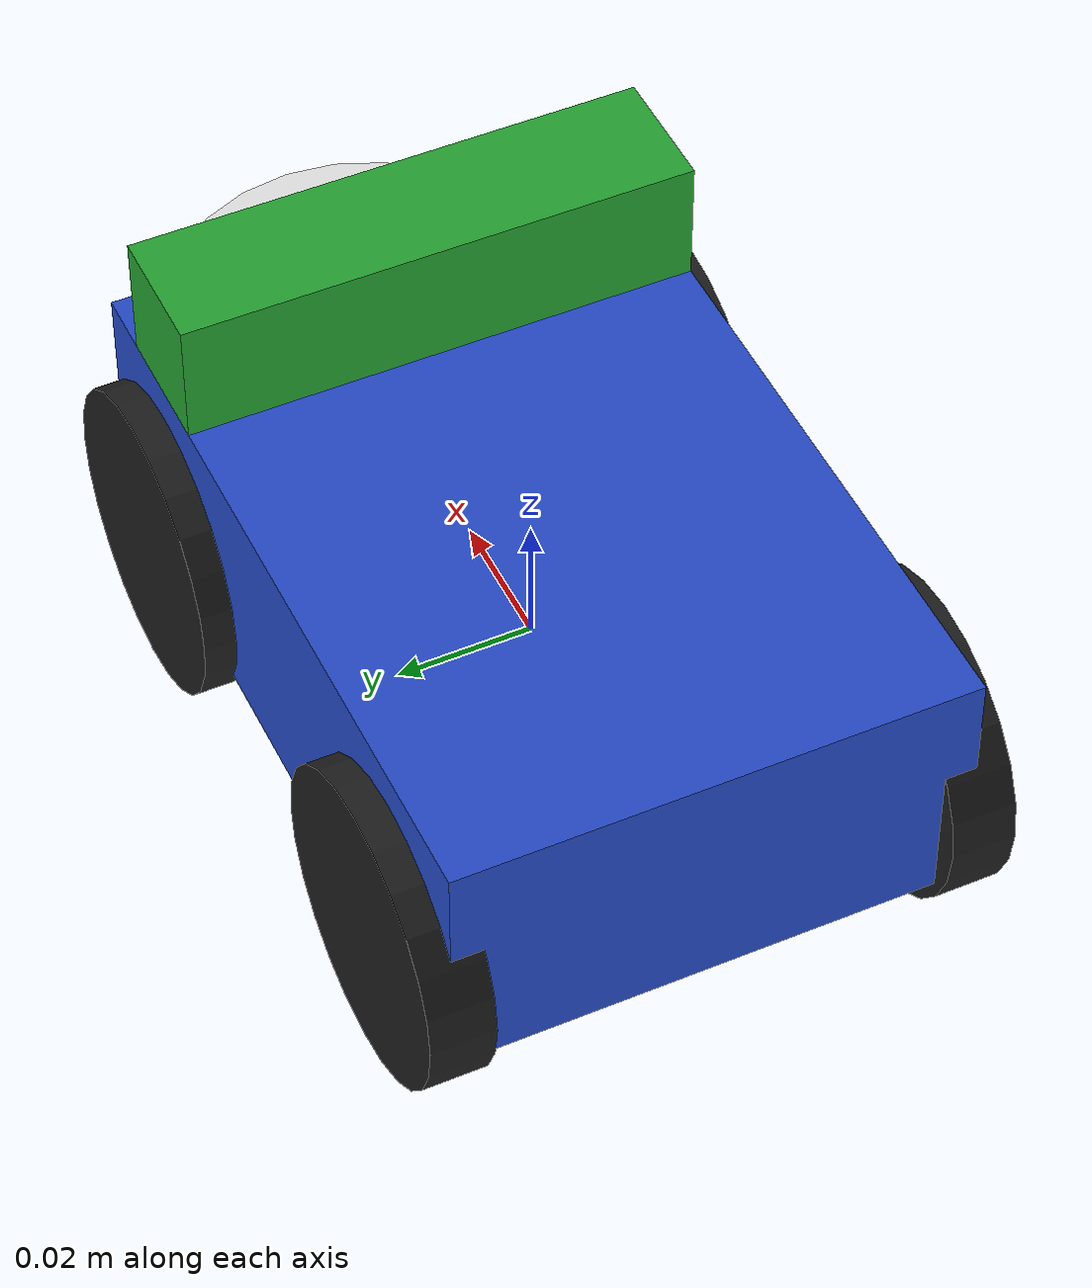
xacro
<?xml version="1.0"?>

<robot name="robot1_xacro" xmlns:xacro="http://www.ros.org/xacro">
  <xacro:include filename = "inertia.xacro"/>
  <xacro:include filename = "macros.xacro"/>
  <xacro:include filename = "gazebo_plugin.xacro"/>

    <!-- ************************ Base Link ******************************** -->
   <link name = "base_link">
    <pose>0 0 0.0375 0 0 0</pose>
    <visual>
        <origin xyz="0 0 0.009375" rpy="0 0 0" />
        <geometry>
            <box size = "0.1125 0.075 0.0375"/>
        </geometry>
    </visual>
    <collision>
      <geometry>
            <box size = "0.1125 0.075 0.0375"/>
        </geometry>
    </collision>
    <inertial>
      <origin xyz="0 0 0" rpy="0 0 0" />
      <mass value="0.375"/>
      <xacro:box_inertia mass="0.375" x="0.1125" y="0.1" z="0.0375" />
    </inertial>
  </link>
  <gazebo reference="base_link">
    	<turnGravityOff>false</turnGravityOff>
  </gazebo>
  <!-- ************************ Laseer Sensor ******************************** -->

 <link name="sensor_laser">
    <inertial>
      <origin xyz="0 0 0" rpy="0 0 0"/>
      <mass value="0.375"/>
      <xacro:cy_inertia mass="0.375" r="0.028125" l="0.009375" />
    </inertial>
    <visual>
      <origin xyz="0 0 0" rpy="0 0 0"/>
      <geometry>
        <cylinder radius="0.028125" length="0.009375"/>
      </geometry>
      <material name="white"/>
    </visual>
    <collision>
      <origin xyz="0 0 0" rpy="0 0 0"/>
      <geometry>
        <cylinder radius="0.028125" length="0.009375"/>
      </geometry>
    </collision>
  </link>

  <joint name="joint_sensor_laser" type="fixed">
     <origin xyz="0.05625 0 0.009375" rpy="0 0 0"/>
     <parent link="base_link"/>
     <child link="sensor_laser"/>

  </joint>
  <!-- ************************ Camera ******************************** -->
	<link name="camera">
	    <collision>
	    	<origin xyz="0 0 0" rpy="0 0 0"/>
	      	<geometry>
	    		<box size="0.0375 0.075 0.075"/>
	      	</geometry>
	    </collision>

	    <visual>
	    	<origin xyz="0 0 0" rpy="0 0 0"/>
	      	<geometry>
	    		<box size="0.01875 0.075 0.01875"/>
	      	</geometry>
	      	<material name="crusta"/>
	    </visual>

		<inertial>
			<origin xyz="0 0 0" />
			<mass value="0.375"/>

      <xacro:box_inertia mass="0.375" x="0.01875" y="0.075" z="0.075"/>

		</inertial>
	</link>

	<joint name="camera_joint" type="fixed">
	    <parent link="base_link"/>
	    <child link="camera"/>
	    <origin xyz="0.0375 0 0.0375" rpy="0 0 0"/>
	</joint>

  <!-- ************************ Wheelz and Jointz ******************************** -->
  <xacro:wheelz name = "back_right_wheel_link"/>
  <xacro:jointz name = "base_to_right_wheel" child = "back_right_wheel_link" origin_xyz = "-0.0375 -0.0375 0.0"/>

  <xacro:wheelz name = "back_left_wheel_link"/>
  <xacro:jointz name = "back_to_left_wheel" child = "back_left_wheel_link" origin_xyz = "-0.0375 0.0375 0.0"/>

  <xacro:wheelz name = "front_right_wheel_link"/>
  <xacro:jointz name = "base_to_front_right_wheel" child = "front_right_wheel_link" origin_xyz = "0.0375 -0.0375 0.0"/>

  <xacro:wheelz name = "front_left_wheel_link"/>
  <xacro:jointz name = "base_to_front_left_wheel" child = "front_left_wheel_link" origin_xyz = "0.0375 0.0375 0.0"/>

</robot>

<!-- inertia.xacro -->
<robot>
    <macro name = "box_inertia" params = "mass x y z">
        <inertia ixx="${mass * ((y*y)+(z*z))/12}" ixy="0" ixz="0"
        iyy ="${mass * ((x*x)+(z*z))/12}" iyz="0" izz="${mass * ((y*y)+(x*x))/12}" />
    </macro>
    <macro name="cy_inertia" params = "mass r l">
        <inertia ixx="${mass * (3*r*r+(l*l))/12}" ixy="0" ixz="0"
        iyy ="${mass * (3*r*r+(l*l))/12}" iyz="0" izz="${mass * (r*r)/2}"  />
    </macro>
</robot>

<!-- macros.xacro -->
<robot  xmlns:xacro="http://www.ros.org/xacro">
  <xacro:include filename = "inertia.xacro"/>
  <macro name = "wheelz" params = "name">
        <link name="${name}">
            <visual>
                <origin rpy="1.57079632679 0 0" xyz="0 0 0"/>
                <geometry>
                <cylinder length="0.009375" radius="0.0225"/>
                </geometry>
                <material name="Black"/>
            </visual>
            <collision>
                <origin rpy="0 1.507 1.507" xyz = "0 0 0"/>
                <geometry>
                    <cylinder length="0.009375" radius="0.0225"/>
                </geometry>
            </collision>
            <inertial>
                 <origin rpy="0 1.507 1.507" xyz = "0 0 0"/>
                <mass value="0.075"/>
                <xacro:cy_inertia mass="0.075" r="0.0225" l="0.009375" />
            </inertial>
        </link>
    </macro>

    <macro name="jointz" params="name child origin_xyz">
        <joint name="${name}" type="continuous">
            <axis xyz="0 0.75 0"/>
            <parent link="base_link"/>
            <child link="${child}"/>
            <origin rpy="0 0 0" xyz="${origin_xyz}"/>
        </joint>
    </macro>

</robot>
